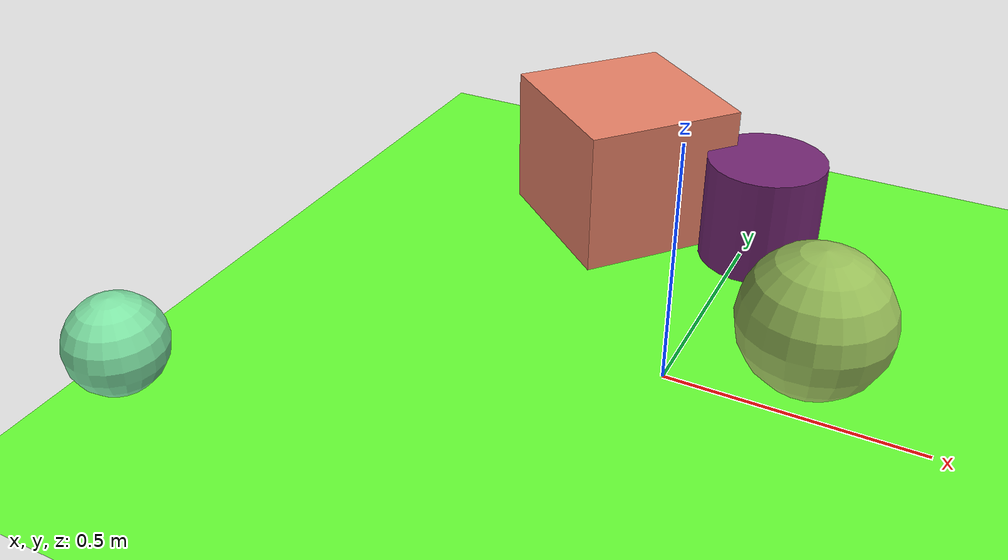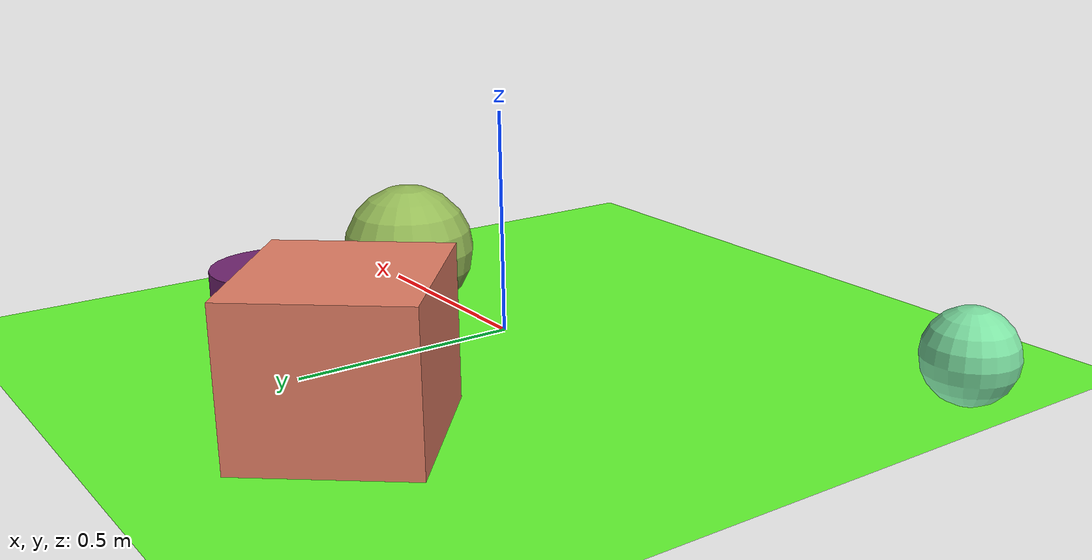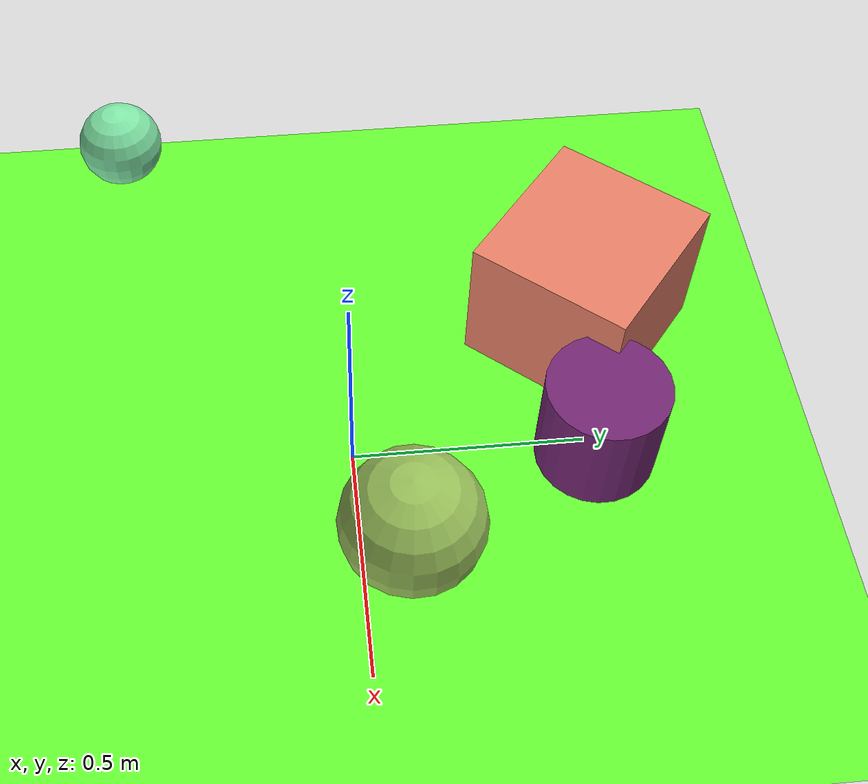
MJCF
<mujoco>
   <asset>
<texture type="skybox" builtin="gradient" rgb1="0.2 0.1 0.8" rgb2="0.3 0.6 0.1" width="256" height="256"/>
<texture name="gradient_0" builtin="gradient" rgb1="0.8 0.9 0.4" rgb2="0.4 0.6 0.3" width="200" height="200"/>
<texture name="flat_1" builtin="flat" rgb1="0.9 0.5 0.4" rgb2="0.9 0.5 0.4"  width="200" height="200"/>
<texture name="checker_2" builtin="checker" rgb1="0.5 0.9 0.6" rgb2="0.5 0.9 0.7" width="200" height="200"/>
<texture name="checker_3" builtin="checker" rgb1="0.8 0.3 0.8" rgb2="0.1 0.0 0.1" width="200" height="200"/><material name="gradient_0_mat" reflectance="0" texture="gradient_0" texuniform="true"/>
<material name="flat_1_mat" reflectance="0" texture="flat_1" texuniform="true"/>
<material name="checker_2_mat" reflectance="0" texrepeat="6 6" texture="checker_2" texuniform="false" />
<material name="checker_3_mat" reflectance="0" texrepeat="5 5" texture="checker_3" texuniform="false" />
   </asset>

   <worldbody>
      <light diffuse=".9 .9 .9" pos="0 0 3" dir="0 0 -1"/>
     <geom type="plane" size="1 1 0.1" rgba="0.4 1.0 0.2 1"/>
<geom type="sphere" pos="0.25 0.1 0.15" size="0.15 0.15 0.15" material="gradient_0_mat" euler="0 0 48" />
<geom type="box" pos="-0.31 0.54 0.16" size="0.18 0.19 0.16" material="flat_1_mat" euler="0 0 50" />
<geom type="sphere" pos="-0.9 -0.5 0.1" size="0.1 0.1 0.1" material="checker_2_mat" euler="0 0 15" />
<geom type="cylinder" pos="0.03 0.52 0.12" size="0.13 0.12 0.12" material="checker_3_mat" euler="0 0 83" /><camera euler="60 0 180" fovy="60" name="camera1" pos="-0.2 -1.5 1"></camera>   </worldbody>
</mujoco>
